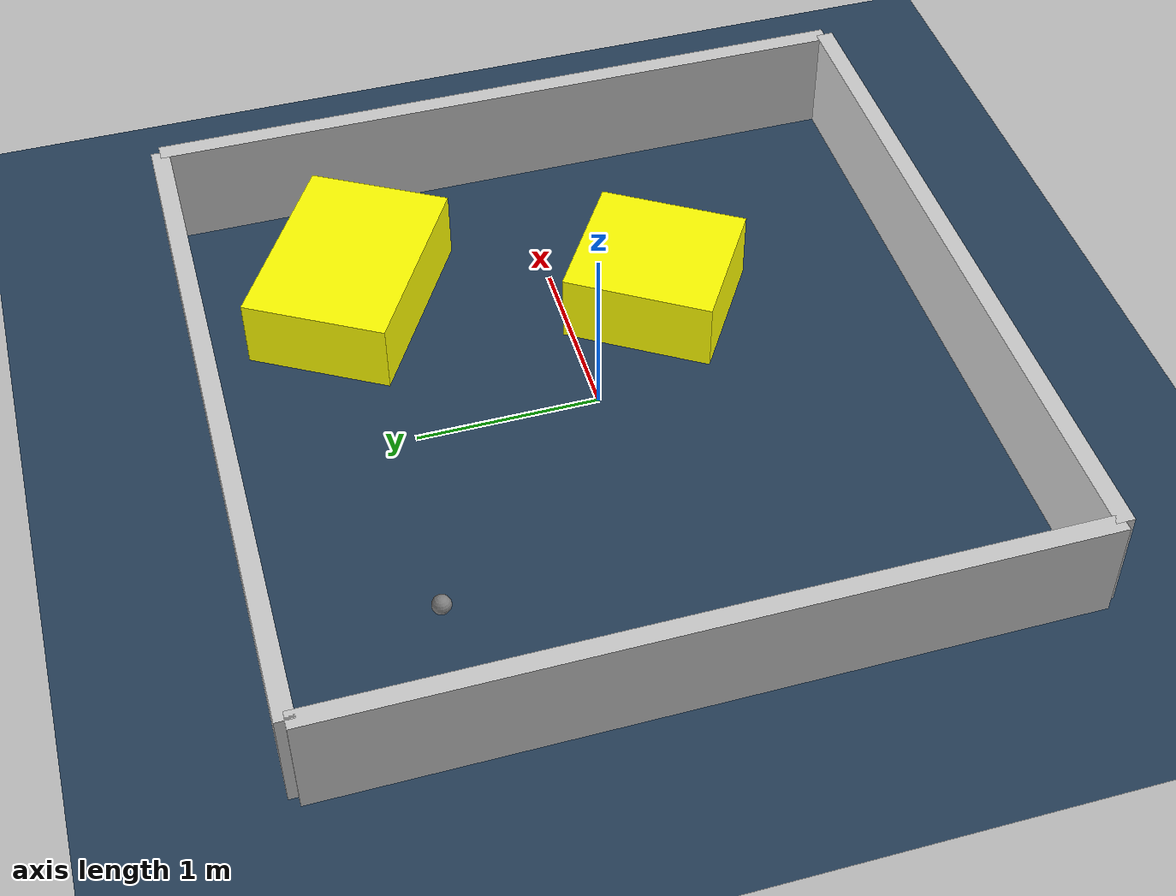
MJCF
<?xml version="1.0" ?>
<mujoco model="generated_environment">
  <option timestep="0.01" integrator="RK4" cone="elliptic"/>
  <default>
    <geom density="1"/>
  </default>
  <asset>
    <texture builtin="gradient" height="3072" rgb1="0.3 0.5 0.7" rgb2="0 0 0" type="skybox" width="512"/>
    <texture builtin="checker" height="300" mark="edge" markrgb="0.8 0.8 0.8" name="groundplane" rgb1="0.2 0.3 0.4" rgb2="0.1 0.2 0.3" type="2d" width="300"/>
    <material name="groundplane" reflectance="0.2" texrepeat="5 5" texture="groundplane" texuniform="true"/>
    <material name="robot" rgba="0.0 1.0 0.0 1"/>
  </asset>
  <worldbody>
    <light dir="0 0 -1" directional="true" pos="0 0 1.5"/>
    <geom condim="4" friction="1.0 0.005 0.001" material="groundplane" name="floor" size="0 0 0.05" type="plane"/>
    <body name="walls">
      <geom name="wall_1" condim="4" pos="-2.0 0.0 0.3" rgba="0.800000011920929 0.800000011920929 0.800000011920929 1.0" size="0.05 2.0 0.3" type="box"/>
      <geom name="wall_2" condim="4" pos="2.0 0.0 0.3" rgba="0.800000011920929 0.800000011920929 0.800000011920929 1.0" size="0.05 2.0 0.3" type="box"/>
      <geom name="wall_3" condim="4" pos="0.0 -2.0 0.3" rgba="0.800000011920929 0.800000011920929 0.800000011920929 1.0" size="2.0 0.05 0.3" type="box"/>
      <geom name="wall_4" condim="4" pos="0.0 2.0 0.3" rgba="0.800000011920929 0.800000011920929 0.800000011920929 1.0" size="2.0 0.05 0.3" type="box"/>
    </body>
    <body name="robot">
      <joint name="joint_x" type="slide" pos="0 0 0" axis="1 0 0"/>
      <joint name="joint_y" type="slide" pos="0 0 0" axis="0 1 0"/>
      <geom name="robot" type="sphere" pos="-1.2655919431068647 1.1541900002620005 0.2" size="0.05" mass="5." friction="1.0 0.005 0.0001" condim="4"/>
      <site name="sensor_ball"/>
    </body>
    <body name="obstacle_1_movable">
      <geom name="obstacle_1_movable" condim="4" pos="0.6474837161911169 -0.5151766431961724 0.2" euler="0 0 147.47006181502806" friction="1.0 0.005 0.001" rgba="1 1 0 1" size="0.39179384792683913 0.4188990205289044 0.2" type="box" mass="0.1"/>
      <joint type="free"/>
    </body>
    <body name="obstacle_2_movable">
      <geom name="obstacle_2_movable" condim="4" pos="1.1141861439403125 1.1199581932056717 0.2" euler="0 0 149.4936254427433" friction="1.0 0.005 0.001" rgba="1 1 0 1" size="0.5645251873009596 0.4052535662125287 0.2" type="box" mass="0.1"/>
      <joint type="free"/>
    </body>
  </worldbody>
  <actuator>
    <motor name="actuator_x" joint="joint_x" gear="1" ctrlrange="-1 1"/>
    <motor name="actuator_y" joint="joint_y" gear="1" ctrlrange="-1 1"/>
  </actuator>
</mujoco>
